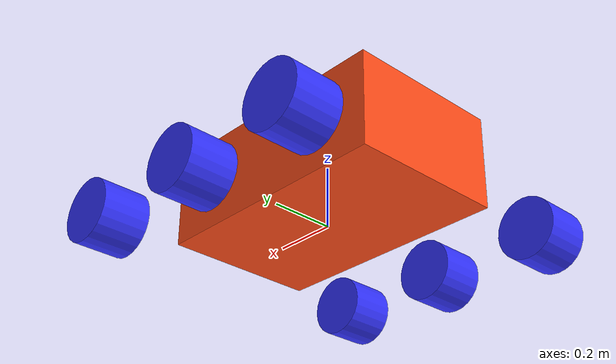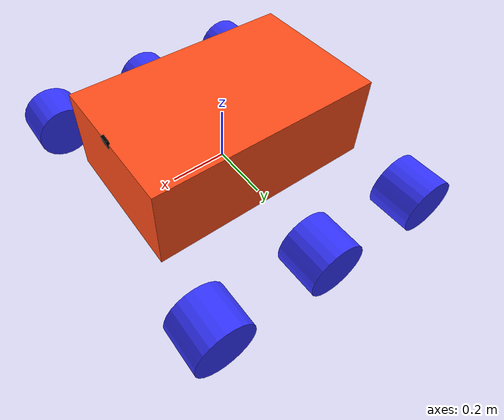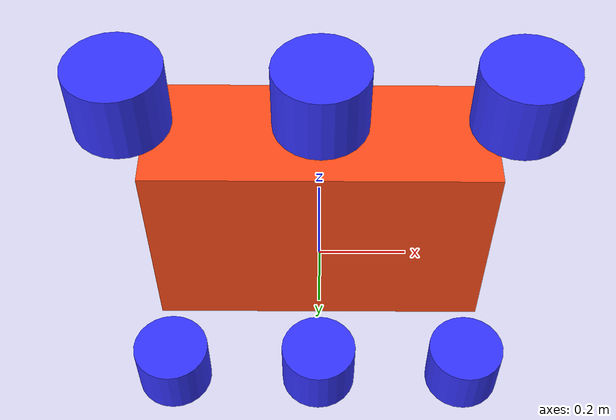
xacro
<?xml version="1.0" ?>
<robot xmlns:xacro="http://www.ros.org/wiki/xacro" name="eureka">

  <xacro:include filename="$(find eureka_simulation)/urdf/inertial_macros.xacro"/>

  <xacro:property name="chassis_length" value="0.8"/>
  <xacro:property name="chassis_width" value="0.5"/>
  <xacro:property name="chassis_height" value="0.3"/>
  <xacro:property name="chassis_mass" value="25.0"/>
  <xacro:property name="wheel_radius" value="0.1"/>
  <xacro:property name="wheel_thickness" value="0.15"/>
  <xacro:property name="wheel_mass" value="4.0"/>
  <xacro:property name="wheel_offset_x" value="0.4"/>
  <xacro:property name="wheel_offset_y" value="0.5"/>
  <xacro:property name="wheel_offset_z" value="0.4"/>

  <xacro:include filename="materials.urdf.xacro"/>

  <link name="base_link">

  </link>

  <link name="chassis">
    <visual>
        <origin xyz="${chassis_length/2} 0 ${chassis_height/2}"/>
        <geometry>
            <box size="${chassis_length} ${chassis_width} ${chassis_height}"/>
        </geometry>
        <material name="orange"/>
    </visual>
    <collision>
        <origin xyz="${chassis_length/2} 0 ${chassis_height/2}"/>
        <geometry>
            <box size="${chassis_length} ${chassis_width} ${chassis_height}"/>
        </geometry>
    </collision>
    <xacro:inertial_box mass="0.5" x="${chassis_length}" y="${chassis_width}" z="${chassis_height}">
        <origin xyz="${chassis_length/2} 0 ${chassis_height/2}" rpy="0 0 0"/>
    </xacro:inertial_box>
  </link>

  <link name="left_rear_wheel">
    <visual>
        <geometry>
            <cylinder radius="${wheel_radius}" length="${wheel_thickness}"/>
        </geometry>
        <material name="blue"/>
    </visual>
    <collision>
        <geometry>
            <sphere radius="${wheel_radius}"/>
        </geometry>
    </collision>
    <xacro:inertial_cylinder mass="${wheel_mass}" length="${wheel_thickness}" radius="${wheel_radius}">
        <origin xyz="0 0 0" rpy="0 0 0"/>
    </xacro:inertial_cylinder>
  </link>

  <link name="left_middle_wheel">
    <visual>
        <geometry>
            <cylinder radius="${wheel_radius}" length="${wheel_thickness}"/>
        </geometry>
        <material name="blue"/>
    </visual>
    <collision>
        <geometry>
            <sphere radius="${wheel_radius}"/>
        </geometry>
    </collision>
    <xacro:inertial_cylinder mass="${wheel_mass}" length="${wheel_thickness}" radius="${wheel_radius}">
        <origin xyz="0 0 0" rpy="0 0 0"/>
    </xacro:inertial_cylinder>
  </link>

  <link name="left_front_wheel">
    <visual>
        <geometry>
            <cylinder radius="${wheel_radius}" length="${wheel_thickness}"/>
        </geometry>
        <material name="blue"/>
    </visual>
    <collision>
        <geometry>
            <sphere radius="${wheel_radius}"/>
        </geometry>
    </collision>
    <xacro:inertial_cylinder mass="${wheel_mass}" length="${wheel_thickness}" radius="${wheel_radius}">
        <origin xyz="0 0 0" rpy="0 0 0"/>
    </xacro:inertial_cylinder>
  </link>

  <link name="right_rear_wheel">
    <visual>
        <geometry>
            <cylinder radius="${wheel_radius}" length="${wheel_thickness}"/>
        </geometry>
        <material name="blue"/>
    </visual>
    <collision>
        <geometry>
            <sphere radius="${wheel_radius}"/>
        </geometry>
    </collision>
    <xacro:inertial_cylinder mass="${wheel_mass}" length="${wheel_thickness}" radius="${wheel_radius}">
        <origin xyz="0 0 0" rpy="0 0 0"/>
    </xacro:inertial_cylinder>
  </link>

  <link name="right_middle_wheel">
    <visual>
        <geometry>
            <cylinder radius="${wheel_radius}" length="${wheel_thickness}"/>
        </geometry>
        <material name="blue"/>
    </visual>
    <collision>
        <geometry>
            <sphere radius="${wheel_radius}"/>
        </geometry>
    </collision>
    <xacro:inertial_cylinder mass="${wheel_mass}" length="${wheel_thickness}" radius="${wheel_radius}">
        <origin xyz="0 0 0" rpy="0 0 0"/>
    </xacro:inertial_cylinder>
  </link>

  <link name="right_front_wheel">
    <visual>
        <geometry>
            <cylinder radius="${wheel_radius}" length="${wheel_thickness}"/>
        </geometry>
        <material name="blue"/>
    </visual>
    <collision>
        <geometry>
            <sphere radius="${wheel_radius}"/>
        </geometry>
    </collision>
    <xacro:inertial_cylinder mass="${wheel_mass}" length="${wheel_thickness}" radius="${wheel_radius}">
        <origin xyz="0 0 0" rpy="0 0 0"/>
    </xacro:inertial_cylinder>
  </link>

  <xacro:include filename="$(find eureka_simulation)/urdf/gazebo_material.urdf.xacro"/>

  <joint name="chassis_joint" type="fixed">
      <parent link="base_link"/>
      <child link="chassis"/>
      <origin xyz="${-chassis_length/2} 0 0"/>
  </joint>

  <joint name="left_rear_wheel_joint" type="continuous">
      <parent link="base_link"/>
      <child link="left_rear_wheel"/>
      <origin xyz="${-wheel_offset_x} ${wheel_offset_y} 0" rpy="-${pi/2} 0 0" />
      <axis xyz="0 -1 1"/>
  </joint>

  <joint name="left_middle_wheel_joint" type="continuous">
      <parent link="base_link"/>
      <child link="left_middle_wheel"/>
      <origin xyz="0 ${wheel_offset_y} -0.001" rpy="-${pi/2} 0 0" />
      <axis xyz="0 0 1"/>
  </joint>

  <joint name="left_front_wheel_joint" type="continuous">
      <parent link="base_link"/>
      <child link="left_front_wheel"/>
      <origin xyz="${wheel_offset_x} ${wheel_offset_y} 0" rpy="-${pi/2} 0 0" />
      <axis xyz="0 -1 1"/>
  </joint>

  <joint name="right_rear_wheel_joint" type="continuous">
      <parent link="base_link"/>
      <child link="right_rear_wheel"/>
      <origin xyz="${-wheel_offset_x} ${-wheel_offset_y} 0" rpy="-${pi/2} 0 0" />
      <axis xyz="0 -1 1"/>
  </joint>

  <joint name="right_middle_wheel_joint" type="continuous">
      <parent link="base_link"/>
      <child link="right_middle_wheel"/>
      <origin xyz="0 ${-wheel_offset_y} -0.001" rpy="-${pi/2} 0 0" />
      <axis xyz="0 0 1"/>
  </joint>

  <joint name="right_front_wheel_joint" type="continuous">
      <parent link="base_link"/>
      <child link="right_front_wheel"/>
      <origin xyz="${wheel_offset_x} ${-wheel_offset_y} 0" rpy="-${pi/2} 0 0" />
      <axis xyz="0 -1 1"/>
  </joint>

  <xacro:include filename="sensor.urdf.xacro"/>

  <xacro:include filename="control.urdf.xacro"/>

  <xacro:include filename="gazebo_material.urdf.xacro"/>

</robot>

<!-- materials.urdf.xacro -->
<robot xmlns:xacro="http://www.ros.org/wiki/xacro" >

  <material name="silver">
    <color rgba="0.700 0.700 0.700 1.000"/>
  </material>

  <material name="white">
      <color rgba="1 1 1 1" />
  </material>

  <material name="orange">
      <color rgba="1 0.3 0.1 1"/>
  </material>

  <material name="blue">
      <color rgba="0.2 0.2 1 1"/>
  </material>

  <material name="black">
      <color rgba="0 0 0 1"/>
  </material>

</robot>

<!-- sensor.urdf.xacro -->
<robot xmlns:xacro="http://www.ros.org/wiki/xacro" >

    <link name="camera_link">
        <visual>
            <geometry>
                <box size="0.010 0.03 0.03"/>
            </geometry>
            <material name="black"/>
        </visual>
        <visual>
            <origin xyz="0 0 -0.05"/>
            <geometry>
                <cylinder radius="0.002" length="0.1"/>
            </geometry>
            <material name="black"/>
        </visual>
    </link>

    <link name="camera_link_optical"></link>

    <joint name="camera_joint" type="fixed">
        <parent link="chassis"/>
        <child link="camera_link"/>
        <origin xyz="${chassis_length} 0 ${chassis_height}" rpy="0 0.18 0"/>
    </joint>

    <joint name="camera_optical_joint" type="fixed">
        <parent link="camera_link"/>
        <child link="camera_link_optical"/>
        <origin xyz="0 0 0" rpy="${-pi/2} 0 ${-pi/2}"/>
    </joint>

    <gazebo reference="camera_link">
        <material>Gazebo/Red</material>

        <sensor name="camera" type="depth">
            <pose> 0 0 0 0 0 0 </pose>
            <visualize>true</visualize>
            <update_rate>10</update_rate>
            <camera>
                <horizontal_fov>1.089</horizontal_fov>
                <image>
                    <format>B8G8R8</format>
                    <width>640</width>
                    <height>480</height>
                </image>
                <clip>
                    <near>0.05</near>
                    <far>8.0</far>
                </clip>
            </camera>
            <plugin name="camera_controller" filename="libgazebo_ros_camera.so">
                <frame_name>camera_link_optical</frame_name>
                <min_depth>0.1</min_depth>
                <max_depth>100.0</max_depth>
            </plugin>
        </sensor>
    </gazebo>

</robot>
